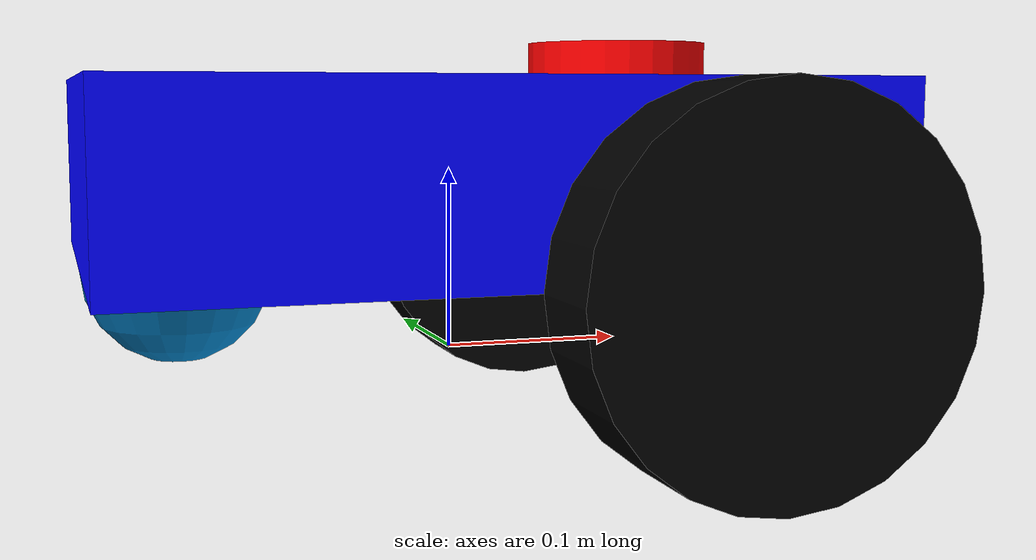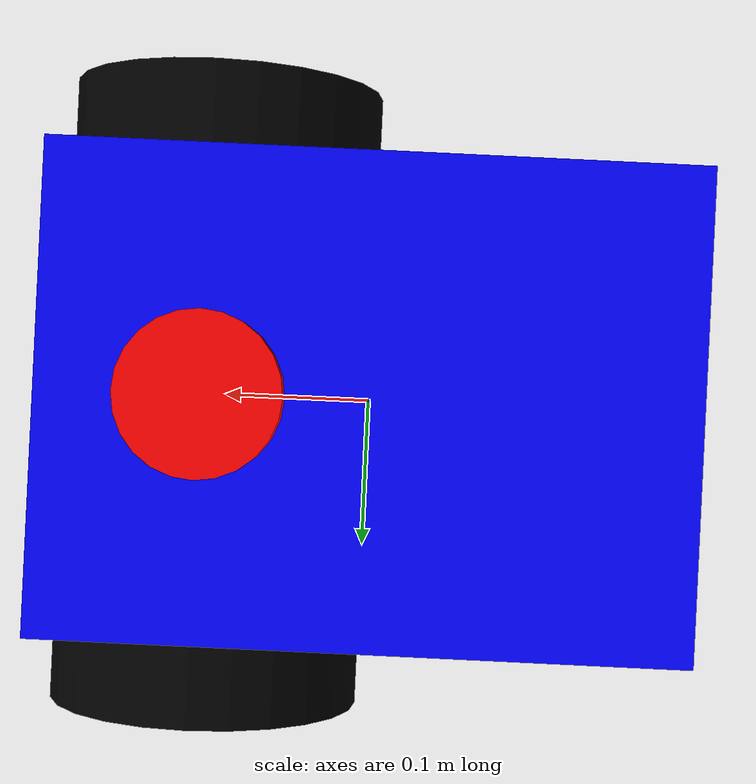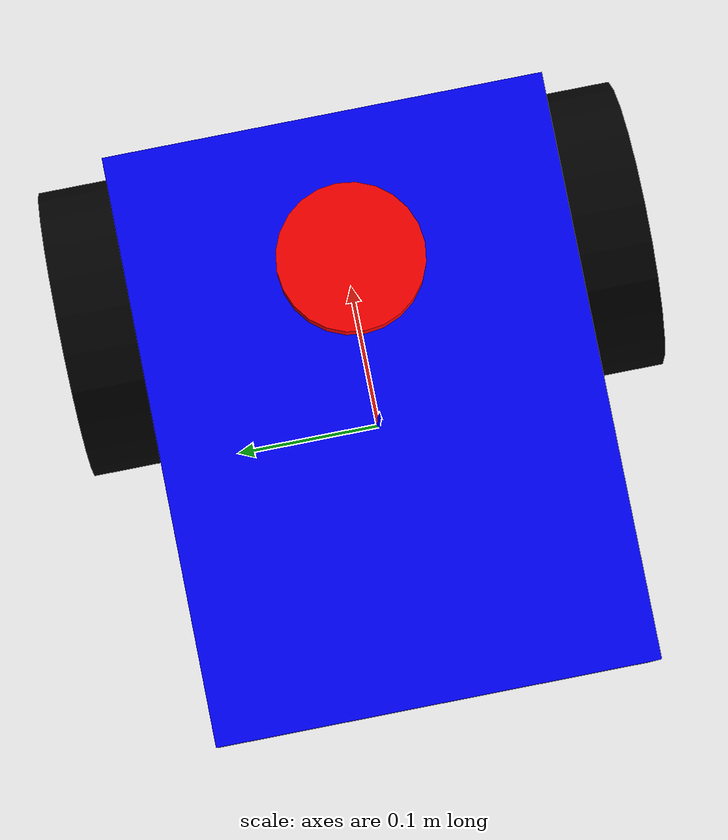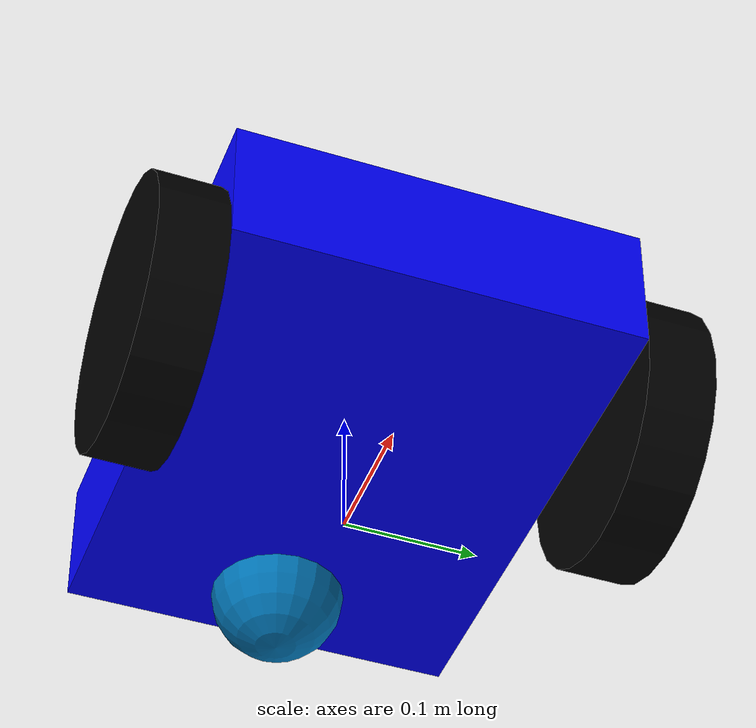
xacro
<?xml version="1.0"?>
<robot xmlns:xacro="http://www.ros.org/wiki/xacro" name="my_2wd_robot">

  <xacro:macro name="box_inertia" params="m w h d">
    <inertial>
      <mass value="${m}"/>
      <inertia ixx="${(m/12) * (h*h + d*d)}" ixy="0.0" ixz="0.0"
               iyy="${(m/12) * (w*w + d*d)}" iyz="0.0"
               izz="${(m/12) * (w*w + h*h)}"/>
    </inertial>
  </xacro:macro>

  <xacro:macro name="cylinder_inertia" params="m r h">
    <inertial>
      <mass value="${m}"/>
      <inertia ixx="${(m/12) * (3*r*r + h*h)}" ixy="0" ixz="0"
               iyy="${(m/12) * (3*r*r + h*h)}" iyz="0"
               izz="${(m/2) * (r*r)}"/>
    </inertial>
  </xacro:macro>

  <link name="base_footprint"/>

  <link name="base_link">
    <visual>
      <geometry><box size="0.4 0.3 0.1"/></geometry>
      <material name="blue"><color rgba="0 0 1 1"/></material>
    </visual>
    <collision>
      <geometry><box size="0.4 0.3 0.1"/></geometry>
    </collision>
    <xacro:box_inertia m="5.0" w="0.4" h="0.3" d="0.1"/>
  </link>

  <joint name="base_joint" type="fixed">
    <parent link="base_footprint"/>
    <child link="base_link"/>
    <origin xyz="0 0 0.1" rpy="0 0 0"/>
  </joint>

  <xacro:macro name="wheel" params="prefix y_offset">
    <link name="${prefix}_wheel">
      <visual>
        <geometry><cylinder radius="0.1" length="0.05"/></geometry>
        <material name="black"><color rgba="0 0 0 1"/></material>
      </visual>
      <collision>
        <geometry><cylinder radius="0.1" length="0.05"/></geometry>
      </collision>
      <xacro:cylinder_inertia m="1.0" r="0.1" h="0.05"/>
    </link>
    <joint name="${prefix}_wheel_joint" type="continuous">
      <parent link="base_link"/>
      <child link="${prefix}_wheel"/>
      <origin xyz="0.1 ${y_offset} -0.05" rpy="1.5708 0 0"/>
      <axis xyz="0 0 1"/>
    </joint>
  </xacro:macro>

  <xacro:wheel prefix="left" y_offset="0.175"/>
  <xacro:wheel prefix="right" y_offset="-0.175"/>

  <link name="caster_wheel">
    <visual>
      <geometry><sphere radius="0.05"/></geometry>
    </visual>
    <collision>
      <geometry><sphere radius="0.05"/></geometry>
    </collision>
    <inertial>
        <mass value="0.1"/>
        <inertia ixx="0.0001" ixy="0" ixz="0" iyy="0.0001" iyz="0" izz="0.0001"/>
    </inertial>
  </link>

  <joint name="caster_joint" type="fixed">
    <parent link="base_link"/>
    <child link="caster_wheel"/>
    <origin xyz="-0.15 0 -0.05" rpy="0 0 0"/>
  </joint>

  <link name="laser_frame">
    <visual>
      <geometry><cylinder radius="0.05" length="0.04"/></geometry>
      <material name="red"><color rgba="1 0 0 1"/></material>
    </visual>
    <collision>
      <geometry><cylinder radius="0.05" length="0.04"/></geometry>
    </collision>
    <xacro:cylinder_inertia m="0.1" r="0.05" h="0.04"/>
  </link>

  <joint name="laser_joint" type="fixed">
    <parent link="base_link"/>
    <child link="laser_frame"/>
    <origin xyz="0.1 0 0.05" rpy="0 0 0"/>
  </joint>

  <gazebo>
    <plugin filename="gz-sim-sensors-system" name="gz::sim::systems::Sensors">
      <render_engine>ogre2</render_engine>
    </plugin>
    <plugin filename="gz-sim-diff-drive-system" name="gz::sim::systems::DiffDrive">
      <left_joint>left_wheel_joint</left_joint>
      <right_joint>right_wheel_joint</right_joint>
      <wheel_separation>0.35</wheel_separation>
      <wheel_radius>0.1</wheel_radius>
      <topic>cmd_vel</topic>
      <odom_topic>odom</odom_topic>
      <frame_id>odom</frame_id>
      <child_frame_id>base_footprint</child_frame_id>
    </plugin>
    <plugin filename="gz-sim-joint-state-publisher-system" name="gz::sim::systems::JointStatePublisher">
      <topic>joint_states</topic>
      <joint_name>left_wheel_joint</joint_name>
      <joint_name>right_wheel_joint</joint_name>
    </plugin>
  </gazebo>

  <gazebo reference="laser_frame">
    <sensor name="laser" type="gpu_lidar">
      <gz_frame_id>laser_frame</gz_frame_id> <topic>scan</topic>
      <always_on>true</always_on>
      <update_rate>10</update_rate>
      <lidar>
        <scan>
          <horizontal>
            <samples>360</samples>
            <resolution>1</resolution>
            <min_angle>-3.14</min_angle>
            <max_angle>3.14</max_angle>
          </horizontal>
        </scan>
        <range>
          <min>0.1</min>
          <max>12.0</max>
        </range>
      </lidar>
    </sensor>
  </gazebo>

</robot>
